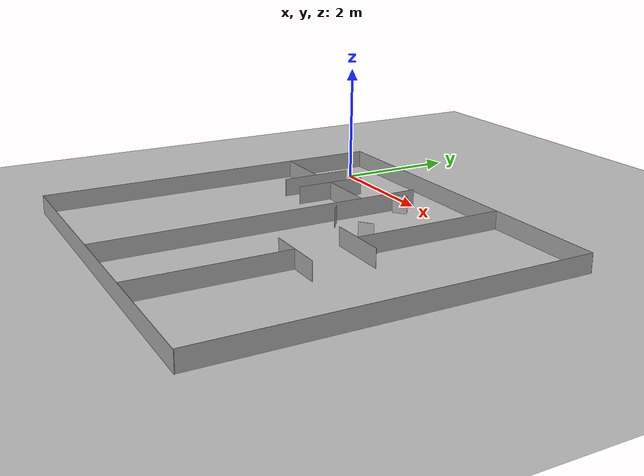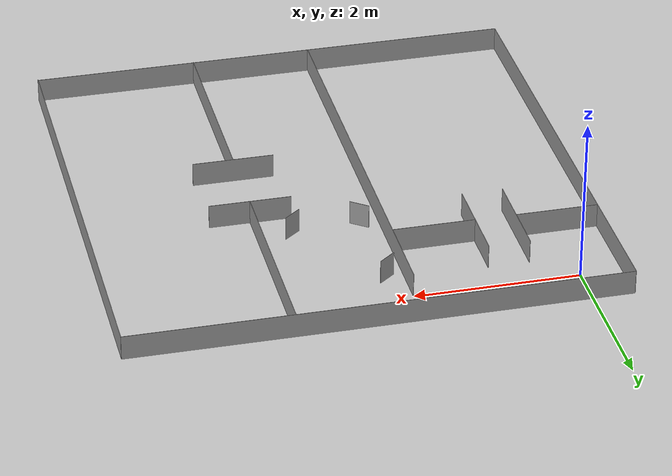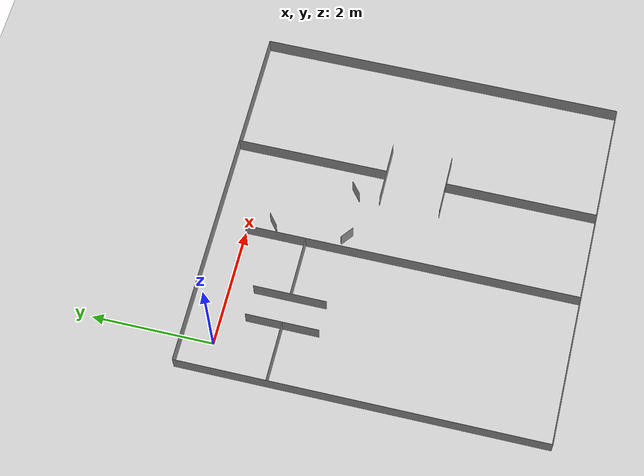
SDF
<sdf version="1.6">
 <world name="default">
  <light name="sun" type="directional">
   <pose>0 0 10 0 -0 0</pose>
   <diffuse>0.8 0.8 0.8 1</diffuse>
   <specular>0.2 0.2 0.2 1</specular>
   <attenuation>
    <range>1000</range>
    <constant>0.9</constant>
    <linear>0.01</linear>
    <quadratic>0.001</quadratic>
   </attenuation>
   <direction>-0.5 0.1 -0.9</direction>
  </light>
  <model name="ground_plane">
   <static>1</static>
   <link name="link">
    <collision name="collision">
     <geometry><plane><normal>0 0 1</normal><size>100 100</size></plane></geometry>
     <surface>
      <contact><collide_bitmask>65535</collide_bitmask></contact>
      <friction><ode><mu>100</mu><mu2>50</mu2></ode></friction>
     </surface>
    </collision>
    <visual name="visual">
     <cast_shadows>0</cast_shadows>
     <geometry><plane><normal>0 0 1</normal><size>100 100</size></plane></geometry>
     <material>
      <script><uri>file://media/materials/scripts/gazebo.material</uri><name>Gazebo/Grey</name></script>
     </material>
    </visual>
   </link>
  </model>
  <gravity>0 0 -9.8</gravity>
  <magnetic_field>6e-06 2.3e-05 -4.2e-05</magnetic_field>
  <atmosphere type="adiabatic"/>
  <physics name="default_physics" default="0" type="ode">
   <max_step_size>0.001</max_step_size>
   <real_time_factor>1</real_time_factor>
   <real_time_update_rate>1000</real_time_update_rate>
  </physics>
  <scene><ambient>0.4 0.4 0.4 1</ambient><background>0.7 0.7 0.7 1</background><shadows>1</shadows></scene>
  <audio><device>default</device></audio>
  <spherical_coordinates>
   <surface_model>EARTH_WGS84</surface_model>
   <latitude_deg>0</latitude_deg>
   <longitude_deg>0</longitude_deg>
   <elevation>0</elevation>
   <heading_deg>0</heading_deg>
  </spherical_coordinates>
  <light name="user_point_light_1" type="point">
   <pose>8.65387 8.47748 1 0 -0 0</pose>
   <diffuse>0.5 0.5 0.5 1</diffuse>
   <specular>0.1 0.1 0.1 1</specular>
   <attenuation>
    <range>20</range>
    <constant>0.5</constant>
    <linear>0.01</linear>
    <quadratic>0.001</quadratic>
   </attenuation>
   <cast_shadows>0</cast_shadows>
   <direction>0 0 -1</direction>
  </light>
  <light name="user_point_light_3" type="point">
   <pose>-4.43712 -8.0056 1 0 -0 0</pose>
   <diffuse>0.5 0.5 0.5 1</diffuse>
   <specular>0.1 0.1 0.1 1</specular>
   <attenuation>
    <range>20</range>
    <constant>0.5</constant>
    <linear>0.01</linear>
    <quadratic>0.001</quadratic>
   </attenuation>
   <cast_shadows>0</cast_shadows>
   <direction>0 0 -1</direction>
  </light>
  <light name="user_point_light_0" type="point">
   <pose>-3.36982 7.52419 1 0 -0 0</pose>
   <diffuse>0.5 0.5 0.5 1</diffuse>
   <specular>0.1 0.1 0.1 1</specular>
   <attenuation>
    <range>20</range>
    <constant>0.5</constant>
    <linear>0.01</linear>
    <quadratic>0.001</quadratic>
   </attenuation>
   <cast_shadows>0</cast_shadows>
   <direction>0 0 -1</direction>
  </light>
  <model name="unit_box_5_5m">
   <link name="link">
    <inertial>
     <mass>1</mass>
     <inertia>
      <ixx>0.166667</ixx>
      <ixy>0</ixy>
      <ixz>0</ixz>
      <iyy>0.166667</iyy>
      <iyz>0</iyz>
      <izz>0.166667</izz>
     </inertia>
    </inertial>
    <pose>0 0 0 1.5707 -0 0</pose>
    <visual name="visual">
     <geometry><box><size>5.5 0.005 0.3</size></box></geometry>
     <material>
      <script><name>Gazebo/Grey</name><uri>file://media/materials/scripts/gazebo.material</uri></script>
      <shader type="vertex"><normal_map>__default__</normal_map></shader>
      <ambient>0.3 0.3 0.3 1</ambient>
      <diffuse>0.7 0.7 0.7 1</diffuse>
      <specular>0.01 0.01 0.01 1</specular>
      <emissive>0 0 0 1</emissive>
     </material>
     <pose>0 -0.156 0 0 -0 0</pose>
    </visual>
    <collision name="collision">
     <pose>0 -0.156 0 0 -0 0</pose>
     <geometry><box><size>5.5 0.005 0.3</size></box></geometry>
     <surface>
      <friction>
       <ode><mu>1</mu><mu2>1</mu2><fdir1>0 0 0</fdir1><slip1>0</slip1><slip2>0</slip2></ode>
       <torsional>
        <coefficient>1</coefficient>
        <patch_radius>0</patch_radius>
        <surface_radius>0</surface_radius>
        <use_patch_radius>1</use_patch_radius>
        <ode><slip>0</slip></ode>
       </torsional>
      </friction>
      <bounce><restitution_coefficient>0</restitution_coefficient><threshold>1e+06</threshold></bounce>
      <contact>
       <collide_without_contact>0</collide_without_contact>
       <collide_without_contact_bitmask>1</collide_without_contact_bitmask>
       <collide_bitmask>1</collide_bitmask>
       <ode>
        <soft_cfm>0</soft_cfm>
        <soft_erp>0.2</soft_erp>
        <kp>1e+13</kp>
        <kd>1</kd>
        <max_vel>0.01</max_vel>
        <min_depth>0</min_depth>
       </ode>
       <bullet>
        <split_impulse>1</split_impulse>
        <split_impulse_penetration_threshold>-0.01</split_impulse_penetration_threshold>
        <soft_cfm>0</soft_cfm>
        <soft_erp>0.2</soft_erp>
        <kp>1e+13</kp>
        <kd>1</kd>
       </bullet>
      </contact>
     </surface>
    </collision>
   </link>
   <static>1</static>
   <pose>2.16 -2.75 0.15 1.5707 0 1.5707</pose>
  </model>
  <model name="unit_box_6_6_3_0_clone">
   <link name="link">
    <inertial>
     <mass>1</mass>
     <inertia>
      <ixx>0.166667</ixx>
      <ixy>0</ixy>
      <ixz>0</ixz>
      <iyy>0.166667</iyy>
      <iyz>0</iyz>
      <izz>0.166667</izz>
     </inertia>
    </inertial>
    <visual name="visual">
     <geometry><box><size>6 0.005 0.3</size></box></geometry>
     <material>
      <script><name>Gazebo/Grey</name><uri>file://media/materials/scripts/gazebo.material</uri></script>
      <shader type="vertex"><normal_map>__default__</normal_map></shader>
      <ambient>0.3 0.3 0.3 1</ambient>
      <diffuse>0.7 0.7 0.7 1</diffuse>
      <specular>0.01 0.01 0.01 1</specular>
      <emissive>0 0 0 1</emissive>
     </material>
    </visual>
    <collision name="collision">
     <geometry><box><size>6 0.005 0.3</size></box></geometry>
     <surface>
      <friction>
       <ode><mu>1</mu><mu2>1</mu2><fdir1>0 0 0</fdir1><slip1>0</slip1><slip2>0</slip2></ode>
       <torsional>
        <coefficient>1</coefficient>
        <patch_radius>0</patch_radius>
        <surface_radius>0</surface_radius>
        <use_patch_radius>1</use_patch_radius>
        <ode><slip>0</slip></ode>
       </torsional>
      </friction>
      <bounce><restitution_coefficient>0</restitution_coefficient><threshold>1e+06</threshold></bounce>
      <contact>
       <collide_without_contact>0</collide_without_contact>
       <collide_without_contact_bitmask>1</collide_without_contact_bitmask>
       <collide_bitmask>1</collide_bitmask>
       <ode>
        <soft_cfm>0</soft_cfm>
        <soft_erp>0.2</soft_erp>
        <kp>1e+13</kp>
        <kd>1</kd>
        <max_vel>0.01</max_vel>
        <min_depth>0</min_depth>
       </ode>
       <bullet>
        <split_impulse>1</split_impulse>
        <split_impulse_penetration_threshold>-0.01</split_impulse_penetration_threshold>
        <soft_cfm>0</soft_cfm>
        <soft_erp>0.2</soft_erp>
        <kp>1e+13</kp>
        <kd>1</kd>
       </bullet>
      </contact>
     </surface>
    </collision>
   </link>
   <static>1</static>
   <pose>2.5 -5.50347 0.143714 0 0.002096 8e-06</pose>
  </model>
  <model name="unit_box_2_5m">
   <link name="link">
    <inertial>
     <mass>1</mass>
     <inertia>
      <ixx>0.166667</ixx>
      <ixy>0</ixy>
      <ixz>0</ixz>
      <iyy>0.166667</iyy>
      <iyz>0</iyz>
      <izz>0.166667</izz>
     </inertia>
    </inertial>
    <visual name="visual">
     <geometry><box><size>2.5 0.005 0.3</size></box></geometry>
     <material>
      <script><name>Gazebo/Grey</name><uri>file://media/materials/scripts/gazebo.material</uri></script>
      <shader type="vertex"><normal_map>__default__</normal_map></shader>
      <ambient>0.3 0.3 0.3 1</ambient>
      <diffuse>0.7 0.7 0.7 1</diffuse>
      <specular>0.01 0.01 0.01 1</specular>
      <emissive>0 0 0 1</emissive>
     </material>
    </visual>
    <collision name="collision">
     <geometry><box><size>2.5 0.005 0.3</size></box></geometry>
     <surface>
      <friction>
       <ode><mu>1</mu><mu2>1</mu2><fdir1>0 0 0</fdir1><slip1>0</slip1><slip2>0</slip2></ode>
       <torsional>
        <coefficient>1</coefficient>
        <patch_radius>0</patch_radius>
        <surface_radius>0</surface_radius>
        <use_patch_radius>1</use_patch_radius>
        <ode><slip>0</slip></ode>
       </torsional>
      </friction>
      <bounce><restitution_coefficient>0</restitution_coefficient><threshold>1e+06</threshold></bounce>
      <contact>
       <collide_without_contact>0</collide_without_contact>
       <collide_without_contact_bitmask>1</collide_without_contact_bitmask>
       <collide_bitmask>1</collide_bitmask>
       <ode>
        <soft_cfm>0</soft_cfm>
        <soft_erp>0.2</soft_erp>
        <kp>1e+13</kp>
        <kd>1</kd>
        <max_vel>0.01</max_vel>
        <min_depth>0</min_depth>
       </ode>
       <bullet>
        <split_impulse>1</split_impulse>
        <split_impulse_penetration_threshold>-0.01</split_impulse_penetration_threshold>
        <soft_cfm>0</soft_cfm>
        <soft_erp>0.2</soft_erp>
        <kp>1e+13</kp>
        <kd>1</kd>
       </bullet>
      </contact>
     </surface>
    </collision>
   </link>
   <static>1</static>
   <pose>3.49996 -4.25094 0.15 -1.3e-05 0 -1.57005</pose>
  </model>
  <model name="unit_box_1m_0_clone">
   <link name="link">
    <inertial>
     <mass>1</mass>
     <inertia>
      <ixx>0.166667</ixx>
      <ixy>0</ixy>
      <ixz>0</ixz>
      <iyy>0.166667</iyy>
      <iyz>0</iyz>
      <izz>0.166667</izz>
     </inertia>
    </inertial>
    <visual name="visual">
     <geometry><box><size>1 0.005 0.3</size></box></geometry>
     <material>
      <script><name>Gazebo/Grey</name><uri>file://media/materials/scripts/gazebo.material</uri></script>
      <shader type="vertex"><normal_map>__default__</normal_map></shader>
      <ambient>0.3 0.3 0.3 1</ambient>
      <diffuse>0.7 0.7 0.7 1</diffuse>
      <specular>0.01 0.01 0.01 1</specular>
      <emissive>0 0 0 1</emissive>
     </material>
    </visual>
    <collision name="collision">
     <geometry><box><size>1 0.005 0.3</size></box></geometry>
     <surface>
      <friction>
       <ode><mu>1</mu><mu2>1</mu2><fdir1>0 0 0</fdir1><slip1>0</slip1><slip2>0</slip2></ode>
       <torsional>
        <coefficient>1</coefficient>
        <patch_radius>0</patch_radius>
        <surface_radius>0</surface_radius>
        <use_patch_radius>1</use_patch_radius>
        <ode><slip>0</slip></ode>
       </torsional>
      </friction>
      <bounce><restitution_coefficient>0</restitution_coefficient><threshold>1e+06</threshold></bounce>
      <contact>
       <collide_without_contact>0</collide_without_contact>
       <collide_without_contact_bitmask>1</collide_without_contact_bitmask>
       <collide_bitmask>1</collide_bitmask>
       <ode>
        <soft_cfm>0</soft_cfm>
        <soft_erp>0.2</soft_erp>
        <kp>1e+13</kp>
        <kd>1</kd>
        <max_vel>0.01</max_vel>
        <min_depth>0</min_depth>
       </ode>
       <bullet>
        <split_impulse>1</split_impulse>
        <split_impulse_penetration_threshold>-0.01</split_impulse_penetration_threshold>
        <soft_cfm>0</soft_cfm>
        <soft_erp>0.2</soft_erp>
        <kp>1e+13</kp>
        <kd>1</kd>
       </bullet>
      </contact>
     </surface>
    </collision>
   </link>
   <static>1</static>
   <pose>3.5 -2.99833 0.15 -7e-06 -0 0.000224</pose>
  </model>
  <model name="unit_box_1m_0_clone_0">
   <link name="link">
    <inertial>
     <mass>1</mass>
     <inertia>
      <ixx>0.166667</ixx>
      <ixy>0</ixy>
      <ixz>0</ixz>
      <iyy>0.166667</iyy>
      <iyz>0</iyz>
      <izz>0.166667</izz>
     </inertia>
    </inertial>
    <visual name="visual">
     <geometry><box><size>1 0.005 0.3</size></box></geometry>
     <material>
      <script><name>Gazebo/Grey</name><uri>file://media/materials/scripts/gazebo.material</uri></script>
      <shader type="vertex"><normal_map>__default__</normal_map></shader>
      <ambient>0.3 0.3 0.3 1</ambient>
      <diffuse>0.7 0.7 0.7 1</diffuse>
      <specular>0.01 0.01 0.01 1</specular>
      <emissive>0 0 0 1</emissive>
     </material>
    </visual>
    <collision name="collision">
     <geometry><box><size>1 0.005 0.3</size></box></geometry>
     <surface>
      <friction>
       <ode><mu>1</mu><mu2>1</mu2><fdir1>0 0 0</fdir1><slip1>0</slip1><slip2>0</slip2></ode>
       <torsional>
        <coefficient>1</coefficient>
        <patch_radius>0</patch_radius>
        <surface_radius>0</surface_radius>
        <use_patch_radius>1</use_patch_radius>
        <ode><slip>0</slip></ode>
       </torsional>
      </friction>
      <bounce><restitution_coefficient>0</restitution_coefficient><threshold>1e+06</threshold></bounce>
      <contact>
       <collide_without_contact>0</collide_without_contact>
       <collide_without_contact_bitmask>1</collide_without_contact_bitmask>
       <collide_bitmask>1</collide_bitmask>
       <ode>
        <soft_cfm>0</soft_cfm>
        <soft_erp>0.2</soft_erp>
        <kp>1e+13</kp>
        <kd>1</kd>
        <max_vel>0.01</max_vel>
        <min_depth>0</min_depth>
       </ode>
       <bullet>
        <split_impulse>1</split_impulse>
        <split_impulse_penetration_threshold>-0.01</split_impulse_penetration_threshold>
        <soft_cfm>0</soft_cfm>
        <soft_erp>0.2</soft_erp>
        <kp>1e+13</kp>
        <kd>1</kd>
       </bullet>
      </contact>
     </surface>
    </collision>
   </link>
   <static>1</static>
   <pose>3.5 -2.00154 0.15 -2e-06 -0 -6e-06</pose>
  </model>
  <model name="unit_box_2_5m_clone">
   <link name="link">
    <inertial>
     <mass>1</mass>
     <inertia>
      <ixx>0.166667</ixx>
      <ixy>0</ixy>
      <ixz>0</ixz>
      <iyy>0.166667</iyy>
      <iyz>0</iyz>
      <izz>0.166667</izz>
     </inertia>
    </inertial>
    <visual name="visual">
     <geometry><box><size>2.5 0.005 0.3</size></box></geometry>
     <material>
      <script><name>Gazebo/Grey</name><uri>file://media/materials/scripts/gazebo.material</uri></script>
      <shader type="vertex"><normal_map>__default__</normal_map></shader>
      <ambient>0.3 0.3 0.3 1</ambient>
      <diffuse>0.7 0.7 0.7 1</diffuse>
      <specular>0.01 0.01 0.01 1</specular>
      <emissive>0 0 0 1</emissive>
     </material>
    </visual>
    <collision name="collision">
     <geometry><box><size>2.5 0.005 0.3</size></box></geometry>
     <surface>
      <friction>
       <ode><mu>1</mu><mu2>1</mu2><fdir1>0 0 0</fdir1><slip1>0</slip1><slip2>0</slip2></ode>
       <torsional>
        <coefficient>1</coefficient>
        <patch_radius>0</patch_radius>
        <surface_radius>0</surface_radius>
        <use_patch_radius>1</use_patch_radius>
        <ode><slip>0</slip></ode>
       </torsional>
      </friction>
      <bounce><restitution_coefficient>0</restitution_coefficient><threshold>1e+06</threshold></bounce>
      <contact>
       <collide_without_contact>0</collide_without_contact>
       <collide_without_contact_bitmask>1</collide_without_contact_bitmask>
       <collide_bitmask>1</collide_bitmask>
       <ode>
        <soft_cfm>0</soft_cfm>
        <soft_erp>0.2</soft_erp>
        <kp>1e+13</kp>
        <kd>1</kd>
        <max_vel>0.01</max_vel>
        <min_depth>0</min_depth>
       </ode>
       <bullet>
        <split_impulse>1</split_impulse>
        <split_impulse_penetration_threshold>-0.01</split_impulse_penetration_threshold>
        <soft_cfm>0</soft_cfm>
        <soft_erp>0.2</soft_erp>
        <kp>1e+13</kp>
        <kd>1</kd>
       </bullet>
      </contact>
     </surface>
    </collision>
   </link>
   <static>1</static>
   <pose>3.50001 -0.74899 0.15 -4e-06 -0 -1.56999</pose>
  </model>
  <model name="unit_box_6_6_3_0">
   <link name="link">
    <inertial>
     <mass>1</mass>
     <inertia>
      <ixx>0.166667</ixx>
      <ixy>0</ixy>
      <ixz>0</ixz>
      <iyy>0.166667</iyy>
      <iyz>0</iyz>
      <izz>0.166667</izz>
     </inertia>
    </inertial>
    <visual name="visual">
     <geometry><box><size>6 0.005 0.3</size></box></geometry>
     <material>
      <script><name>Gazebo/Grey</name><uri>file://media/materials/scripts/gazebo.material</uri></script>
      <shader type="vertex"><normal_map>__default__</normal_map></shader>
      <ambient>0.3 0.3 0.3 1</ambient>
      <diffuse>0.7 0.7 0.7 1</diffuse>
      <specular>0.01 0.01 0.01 1</specular>
      <emissive>0 0 0 1</emissive>
     </material>
    </visual>
    <collision name="collision">
     <geometry><box><size>6 0.005 0.3</size></box></geometry>
     <surface>
      <friction>
       <ode><mu>1</mu><mu2>1</mu2><fdir1>0 0 0</fdir1><slip1>0</slip1><slip2>0</slip2></ode>
       <torsional>
        <coefficient>1</coefficient>
        <patch_radius>0</patch_radius>
        <surface_radius>0</surface_radius>
        <use_patch_radius>1</use_patch_radius>
        <ode><slip>0</slip></ode>
       </torsional>
      </friction>
      <bounce><restitution_coefficient>0</restitution_coefficient><threshold>1e+06</threshold></bounce>
      <contact>
       <collide_without_contact>0</collide_without_contact>
       <collide_without_contact_bitmask>1</collide_without_contact_bitmask>
       <collide_bitmask>1</collide_bitmask>
       <ode>
        <soft_cfm>0</soft_cfm>
        <soft_erp>0.2</soft_erp>
        <kp>1e+13</kp>
        <kd>1</kd>
        <max_vel>0.01</max_vel>
        <min_depth>0</min_depth>
       </ode>
       <bullet>
        <split_impulse>1</split_impulse>
        <split_impulse_penetration_threshold>-0.01</split_impulse_penetration_threshold>
        <soft_cfm>0</soft_cfm>
        <soft_erp>0.2</soft_erp>
        <kp>1e+13</kp>
        <kd>1</kd>
       </bullet>
      </contact>
     </surface>
    </collision>
   </link>
   <static>1</static>
   <pose>2.49964 0.503222 0.149981 -3e-06 6e-06 0.000372</pose>
  </model>
  <model name="unit_box_6_6_3_0_clone_clone_clone">
   <link name="link">
    <inertial>
     <mass>1</mass>
     <inertia>
      <ixx>0.166667</ixx>
      <ixy>0</ixy>
      <ixz>0</ixz>
      <iyy>0.166667</iyy>
      <iyz>0</iyz>
      <izz>0.166667</izz>
     </inertia>
    </inertial>
    <visual name="visual">
     <geometry><box><size>6 0.005 0.3</size></box></geometry>
     <material>
      <script><name>Gazebo/Grey</name><uri>file://media/materials/scripts/gazebo.material</uri></script>
      <shader type="vertex"><normal_map>__default__</normal_map></shader>
      <ambient>0.3 0.3 0.3 1</ambient>
      <diffuse>0.7 0.7 0.7 1</diffuse>
      <specular>0.01 0.01 0.01 1</specular>
      <emissive>0 0 0 1</emissive>
     </material>
    </visual>
    <collision name="collision">
     <geometry><box><size>6 0.005 0.3</size></box></geometry>
     <surface>
      <friction>
       <ode><mu>1</mu><mu2>1</mu2><fdir1>0 0 0</fdir1><slip1>0</slip1><slip2>0</slip2></ode>
       <torsional>
        <coefficient>1</coefficient>
        <patch_radius>0</patch_radius>
        <surface_radius>0</surface_radius>
        <use_patch_radius>1</use_patch_radius>
        <ode><slip>0</slip></ode>
       </torsional>
      </friction>
      <bounce><restitution_coefficient>0</restitution_coefficient><threshold>1e+06</threshold></bounce>
      <contact>
       <collide_without_contact>0</collide_without_contact>
       <collide_without_contact_bitmask>1</collide_without_contact_bitmask>
       <collide_bitmask>1</collide_bitmask>
       <ode>
        <soft_cfm>0</soft_cfm>
        <soft_erp>0.2</soft_erp>
        <kp>1e+13</kp>
        <kd>1</kd>
        <max_vel>0.01</max_vel>
        <min_depth>0</min_depth>
       </ode>
       <bullet>
        <split_impulse>1</split_impulse>
        <split_impulse_penetration_threshold>-0.01</split_impulse_penetration_threshold>
        <soft_cfm>0</soft_cfm>
        <soft_erp>0.2</soft_erp>
        <kp>1e+13</kp>
        <kd>1</kd>
       </bullet>
      </contact>
     </surface>
    </collision>
   </link>
   <static>1</static>
   <pose>5.50087 -2.49919 0.149981 -1e-06 6e-06 -1.57005</pose>
  </model>
  <model name="unit_box_1m">
   <link name="link">
    <inertial>
     <mass>1</mass>
     <inertia>
      <ixx>0.166667</ixx>
      <ixy>0</ixy>
      <ixz>0</ixz>
      <iyy>0.166667</iyy>
      <iyz>0</iyz>
      <izz>0.166667</izz>
     </inertia>
    </inertial>
    <visual name="visual">
     <geometry><box><size>1 0.005 0.3</size></box></geometry>
     <material>
      <script><name>Gazebo/Grey</name><uri>file://media/materials/scripts/gazebo.material</uri></script>
      <shader type="vertex"><normal_map>__default__</normal_map></shader>
      <ambient>0.3 0.3 0.3 1</ambient>
      <diffuse>0.7 0.7 0.7 1</diffuse>
      <specular>0.01 0.01 0.01 1</specular>
      <emissive>0 0 0 1</emissive>
     </material>
    </visual>
    <collision name="collision">
     <geometry><box><size>1 0.005 0.3</size></box></geometry>
     <surface>
      <friction>
       <ode><mu>1</mu><mu2>1</mu2><fdir1>0 0 0</fdir1><slip1>0</slip1><slip2>0</slip2></ode>
       <torsional>
        <coefficient>1</coefficient>
        <patch_radius>0</patch_radius>
        <surface_radius>0</surface_radius>
        <use_patch_radius>1</use_patch_radius>
        <ode><slip>0</slip></ode>
       </torsional>
      </friction>
      <bounce><restitution_coefficient>0</restitution_coefficient><threshold>1e+06</threshold></bounce>
      <contact>
       <collide_without_contact>0</collide_without_contact>
       <collide_without_contact_bitmask>1</collide_without_contact_bitmask>
       <collide_bitmask>1</collide_bitmask>
       <ode>
        <soft_cfm>0</soft_cfm>
        <soft_erp>0.2</soft_erp>
        <kp>1e+13</kp>
        <kd>1</kd>
        <max_vel>0.01</max_vel>
        <min_depth>0</min_depth>
       </ode>
       <bullet>
        <split_impulse>1</split_impulse>
        <split_impulse_penetration_threshold>-0.01</split_impulse_penetration_threshold>
        <soft_cfm>0</soft_cfm>
        <soft_erp>0.2</soft_erp>
        <kp>1e+13</kp>
        <kd>1</kd>
       </bullet>
      </contact>
     </surface>
    </collision>
   </link>
   <static>1</static>
   <pose>-0.000314 -0.999983 0.15 -5e-06 -0 -2e-05</pose>
  </model>
  <model name="unit_box_6_6_3_0_clone_clone">
   <link name="link">
    <inertial>
     <mass>1</mass>
     <inertia>
      <ixx>0.166667</ixx>
      <ixy>0</ixy>
      <ixz>0</ixz>
      <iyy>0.166667</iyy>
      <iyz>0</iyz>
      <izz>0.166667</izz>
     </inertia>
    </inertial>
    <visual name="visual">
     <geometry><box><size>6 0.005 0.3</size></box></geometry>
     <material>
      <script><name>Gazebo/Grey</name><uri>file://media/materials/scripts/gazebo.material</uri></script>
      <shader type="vertex"><normal_map>__default__</normal_map></shader>
      <ambient>0.3 0.3 0.3 1</ambient>
      <diffuse>0.7 0.7 0.7 1</diffuse>
      <specular>0.01 0.01 0.01 1</specular>
      <emissive>0 0 0 1</emissive>
     </material>
    </visual>
    <collision name="collision">
     <geometry><box><size>6 0.005 0.3</size></box></geometry>
     <surface>
      <friction>
       <ode><mu>1</mu><mu2>1</mu2><fdir1>0 0 0</fdir1><slip1>0</slip1><slip2>0</slip2></ode>
       <torsional>
        <coefficient>1</coefficient>
        <patch_radius>0</patch_radius>
        <surface_radius>0</surface_radius>
        <use_patch_radius>1</use_patch_radius>
        <ode><slip>0</slip></ode>
       </torsional>
      </friction>
      <bounce><restitution_coefficient>0</restitution_coefficient><threshold>1e+06</threshold></bounce>
      <contact>
       <collide_without_contact>0</collide_without_contact>
       <collide_without_contact_bitmask>1</collide_without_contact_bitmask>
       <collide_bitmask>1</collide_bitmask>
       <ode>
        <soft_cfm>0</soft_cfm>
        <soft_erp>0.2</soft_erp>
        <kp>1e+13</kp>
        <kd>1</kd>
        <max_vel>0.01</max_vel>
        <min_depth>0</min_depth>
       </ode>
       <bullet>
        <split_impulse>1</split_impulse>
        <split_impulse_penetration_threshold>-0.01</split_impulse_penetration_threshold>
        <soft_cfm>0</soft_cfm>
        <soft_erp>0.2</soft_erp>
        <kp>1e+13</kp>
        <kd>1</kd>
       </bullet>
      </contact>
     </surface>
    </collision>
   </link>
   <static>1</static>
   <pose>-0.501651 -2.5001 0.14993 2.7e-05 2.3e-05 -1.56978</pose>
  </model>
  <model name="unit_box_1m_0_clone_1">
   <link name="link">
    <inertial>
     <mass>1</mass>
     <inertia>
      <ixx>0.166667</ixx>
      <ixy>0</ixy>
      <ixz>0</ixz>
      <iyy>0.166667</iyy>
      <iyz>0</iyz>
      <izz>0.166667</izz>
     </inertia>
    </inertial>
    <visual name="visual">
     <geometry><box><size>1 0.005 0.3</size></box></geometry>
     <material>
      <script><name>Gazebo/Grey</name><uri>file://media/materials/scripts/gazebo.material</uri></script>
      <shader type="vertex"><normal_map>__default__</normal_map></shader>
      <ambient>0.3 0.3 0.3 1</ambient>
      <diffuse>0.7 0.7 0.7 1</diffuse>
      <specular>0.01 0.01 0.01 1</specular>
      <emissive>0 0 0 1</emissive>
     </material>
    </visual>
    <collision name="collision">
     <geometry><box><size>1 0.005 0.3</size></box></geometry>
     <surface>
      <friction>
       <ode><mu>1</mu><mu2>1</mu2><fdir1>0 0 0</fdir1><slip1>0</slip1><slip2>0</slip2></ode>
       <torsional>
        <coefficient>1</coefficient>
        <patch_radius>0</patch_radius>
        <surface_radius>0</surface_radius>
        <use_patch_radius>1</use_patch_radius>
        <ode><slip>0</slip></ode>
       </torsional>
      </friction>
      <bounce><restitution_coefficient>0</restitution_coefficient><threshold>1e+06</threshold></bounce>
      <contact>
       <collide_without_contact>0</collide_without_contact>
       <collide_without_contact_bitmask>1</collide_without_contact_bitmask>
       <collide_bitmask>1</collide_bitmask>
       <ode>
        <soft_cfm>0</soft_cfm>
        <soft_erp>0.2</soft_erp>
        <kp>1e+13</kp>
        <kd>1</kd>
        <max_vel>0.01</max_vel>
        <min_depth>0</min_depth>
       </ode>
       <bullet>
        <split_impulse>1</split_impulse>
        <split_impulse_penetration_threshold>-0.01</split_impulse_penetration_threshold>
        <soft_cfm>0</soft_cfm>
        <soft_erp>0.2</soft_erp>
        <kp>1e+13</kp>
        <kd>1</kd>
       </bullet>
      </contact>
     </surface>
    </collision>
   </link>
   <static>1</static>
   <pose>1.50179 -1.00283 0.149196 -1.7e-05 0.000226 -0.000454</pose>
  </model>
  <model name="unit_box_1.2m">
   <link name="link">
    <inertial>
     <mass>1</mass>
     <inertia>
      <ixx>0.166667</ixx>
      <ixy>0</ixy>
      <ixz>0</ixz>
      <iyy>0.166667</iyy>
      <iyz>0</iyz>
      <izz>0.166667</izz>
     </inertia>
    </inertial>
    <visual name="visual">
     <geometry><box><size>1.2 0.005 0.3</size></box></geometry>
     <material>
      <script><name>Gazebo/Grey</name><uri>file://media/materials/scripts/gazebo.material</uri></script>
      <shader type="vertex"><normal_map>__default__</normal_map></shader>
      <ambient>0.3 0.3 0.3 1</ambient>
      <diffuse>0.7 0.7 0.7 1</diffuse>
      <specular>0.01 0.01 0.01 1</specular>
      <emissive>0 0 0 1</emissive>
     </material>
    </visual>
    <collision name="collision">
     <geometry><box><size>1.2 0.005 0.3</size></box></geometry>
     <surface>
      <friction>
       <ode><mu>1</mu><mu2>1</mu2><fdir1>0 0 0</fdir1><slip1>0</slip1><slip2>0</slip2></ode>
       <torsional>
        <coefficient>1</coefficient>
        <patch_radius>0</patch_radius>
        <surface_radius>0</surface_radius>
        <use_patch_radius>1</use_patch_radius>
        <ode><slip>0</slip></ode>
       </torsional>
      </friction>
      <bounce><restitution_coefficient>0</restitution_coefficient><threshold>1e+06</threshold></bounce>
      <contact>
       <collide_without_contact>0</collide_without_contact>
       <collide_without_contact_bitmask>1</collide_without_contact_bitmask>
       <collide_bitmask>1</collide_bitmask>
       <ode>
        <soft_cfm>0</soft_cfm>
        <soft_erp>0.2</soft_erp>
        <kp>1e+13</kp>
        <kd>1</kd>
        <max_vel>0.01</max_vel>
        <min_depth>0</min_depth>
       </ode>
       <bullet>
        <split_impulse>1</split_impulse>
        <split_impulse_penetration_threshold>-0.01</split_impulse_penetration_threshold>
        <soft_cfm>0</soft_cfm>
        <soft_erp>0.2</soft_erp>
        <kp>1e+13</kp>
        <kd>1</kd>
       </bullet>
      </contact>
     </surface>
    </collision>
   </link>
   <static>1</static>
   <pose>1 -1.00016 0.149196 -1.7e-05 0.000226 1.57</pose>
  </model>
  <model name="unit_box_1.2m_clone">
   <link name="link">
    <inertial>
     <mass>1</mass>
     <inertia>
      <ixx>0.166667</ixx>
      <ixy>0</ixy>
      <ixz>0</ixz>
      <iyy>0.166667</iyy>
      <iyz>0</iyz>
      <izz>0.166667</izz>
     </inertia>
    </inertial>
    <visual name="visual">
     <geometry><box><size>1.2 0.005 0.3</size></box></geometry>
     <material>
      <script><name>Gazebo/Grey</name><uri>file://media/materials/scripts/gazebo.material</uri></script>
      <shader type="vertex"><normal_map>__default__</normal_map></shader>
      <ambient>0.3 0.3 0.3 1</ambient>
      <diffuse>0.7 0.7 0.7 1</diffuse>
      <specular>0.01 0.01 0.01 1</specular>
      <emissive>0 0 0 1</emissive>
     </material>
    </visual>
    <collision name="collision">
     <geometry><box><size>1.2 0.005 0.3</size></box></geometry>
     <surface>
      <friction>
       <ode><mu>1</mu><mu2>1</mu2><fdir1>0 0 0</fdir1><slip1>0</slip1><slip2>0</slip2></ode>
       <torsional>
        <coefficient>1</coefficient>
        <patch_radius>0</patch_radius>
        <surface_radius>0</surface_radius>
        <use_patch_radius>1</use_patch_radius>
        <ode><slip>0</slip></ode>
       </torsional>
      </friction>
      <bounce><restitution_coefficient>0</restitution_coefficient><threshold>1e+06</threshold></bounce>
      <contact>
       <collide_without_contact>0</collide_without_contact>
       <collide_without_contact_bitmask>1</collide_without_contact_bitmask>
       <collide_bitmask>1</collide_bitmask>
       <ode>
        <soft_cfm>0</soft_cfm>
        <soft_erp>0.2</soft_erp>
        <kp>1e+13</kp>
        <kd>1</kd>
        <max_vel>0.01</max_vel>
        <min_depth>0</min_depth>
       </ode>
       <bullet>
        <split_impulse>1</split_impulse>
        <split_impulse_penetration_threshold>-0.01</split_impulse_penetration_threshold>
        <soft_cfm>0</soft_cfm>
        <soft_erp>0.2</soft_erp>
        <kp>1e+13</kp>
        <kd>1</kd>
       </bullet>
      </contact>
     </surface>
    </collision>
   </link>
   <static>1</static>
   <pose>0.5 -1 0.15 0 -0 1.57</pose>
  </model>
  <model name="unit_box_50cm_30cm">
   <link name="link">
    <inertial>
     <mass>1</mass>
     <inertia>
      <ixx>0.166667</ixx>
      <ixy>0</ixy>
      <ixz>0</ixz>
      <iyy>0.166667</iyy>
      <iyz>0</iyz>
      <izz>0.166667</izz>
     </inertia>
    </inertial>
    <visual name="visual">
     <geometry><box><size>0.25 0.005 0.3</size></box></geometry>
     <material>
      <script><name>Gazebo/Grey</name><uri>file://media/materials/scripts/gazebo.material</uri></script>
      <shader type="vertex"><normal_map>__default__</normal_map></shader>
      <ambient>0.3 0.3 0.3 1</ambient>
      <diffuse>0.7 0.7 0.7 1</diffuse>
      <specular>0.01 0.01 0.01 1</specular>
      <emissive>0 0 0 1</emissive>
     </material>
    </visual>
    <collision name="collision">
     <geometry><box><size>0.25 0.005 0.3</size></box></geometry>
     <surface>
      <friction>
       <ode><mu>1</mu><mu2>1</mu2><fdir1>0 0 0</fdir1><slip1>0</slip1><slip2>0</slip2></ode>
       <torsional>
        <coefficient>1</coefficient>
        <patch_radius>0</patch_radius>
        <surface_radius>0</surface_radius>
        <use_patch_radius>1</use_patch_radius>
        <ode><slip>0</slip></ode>
       </torsional>
      </friction>
      <bounce><restitution_coefficient>0</restitution_coefficient><threshold>1e+06</threshold></bounce>
      <contact>
       <collide_without_contact>0</collide_without_contact>
       <collide_without_contact_bitmask>1</collide_without_contact_bitmask>
       <collide_bitmask>1</collide_bitmask>
       <ode>
        <soft_cfm>0</soft_cfm>
        <soft_erp>0.2</soft_erp>
        <kp>1e+13</kp>
        <kd>1</kd>
        <max_vel>0.01</max_vel>
        <min_depth>0</min_depth>
       </ode>
       <bullet>
        <split_impulse>1</split_impulse>
        <split_impulse_penetration_threshold>-0.01</split_impulse_penetration_threshold>
        <soft_cfm>0</soft_cfm>
        <soft_erp>0.2</soft_erp>
        <kp>1e+13</kp>
        <kd>1</kd>
       </bullet>
      </contact>
     </surface>
    </collision>
   </link>
   <static>1</static>
   <pose>3.07671 -1.59084 0.165707 0 -0 0.675672</pose>
  </model>
  <model name="unit_box_50cm_30cm_clone">
   <link name="link">
    <inertial>
     <mass>1</mass>
     <inertia>
      <ixx>0.166667</ixx>
      <ixy>0</ixy>
      <ixz>0</ixz>
      <iyy>0.166667</iyy>
      <iyz>0</iyz>
      <izz>0.166667</izz>
     </inertia>
    </inertial>
    <visual name="visual">
     <geometry><box><size>0.25 0.005 0.3</size></box></geometry>
     <material>
      <script><name>Gazebo/Grey</name><uri>file://media/materials/scripts/gazebo.material</uri></script>
      <shader type="vertex"><normal_map>__default__</normal_map></shader>
      <ambient>0.3 0.3 0.3 1</ambient>
      <diffuse>0.7 0.7 0.7 1</diffuse>
      <specular>0.01 0.01 0.01 1</specular>
      <emissive>0 0 0 1</emissive>
     </material>
    </visual>
    <collision name="collision">
     <geometry><box><size>0.25 0.005 0.3</size></box></geometry>
     <surface>
      <friction>
       <ode><mu>1</mu><mu2>1</mu2><fdir1>0 0 0</fdir1><slip1>0</slip1><slip2>0</slip2></ode>
       <torsional>
        <coefficient>1</coefficient>
        <patch_radius>0</patch_radius>
        <surface_radius>0</surface_radius>
        <use_patch_radius>1</use_patch_radius>
        <ode><slip>0</slip></ode>
       </torsional>
      </friction>
      <bounce><restitution_coefficient>0</restitution_coefficient><threshold>1e+06</threshold></bounce>
      <contact>
       <collide_without_contact>0</collide_without_contact>
       <collide_without_contact_bitmask>1</collide_without_contact_bitmask>
       <collide_bitmask>1</collide_bitmask>
       <ode>
        <soft_cfm>0</soft_cfm>
        <soft_erp>0.2</soft_erp>
        <kp>1e+13</kp>
        <kd>1</kd>
        <max_vel>0.01</max_vel>
        <min_depth>0</min_depth>
       </ode>
       <bullet>
        <split_impulse>1</split_impulse>
        <split_impulse_penetration_threshold>-0.01</split_impulse_penetration_threshold>
        <soft_cfm>0</soft_cfm>
        <soft_erp>0.2</soft_erp>
        <kp>1e+13</kp>
        <kd>1</kd>
       </bullet>
      </contact>
     </surface>
    </collision>
   </link>
   <static>1</static>
   <pose>2.21559 -0.412815 0.165707 0 -0 0.675672</pose>
  </model>
  <model name="unit_box_50cm_30cm_clone_0">
   <link name="link">
    <inertial>
     <mass>1</mass>
     <inertia>
      <ixx>0.166667</ixx>
      <ixy>0</ixy>
      <ixz>0</ixz>
      <iyy>0.166667</iyy>
      <iyz>0</iyz>
      <izz>0.166667</izz>
     </inertia>
    </inertial>
    <visual name="visual">
     <geometry><box><size>0.25 0.005 0.3</size></box></geometry>
     <material>
      <script><name>Gazebo/Grey</name><uri>file://media/materials/scripts/gazebo.material</uri></script>
      <shader type="vertex"><normal_map>__default__</normal_map></shader>
      <ambient>0.3 0.3 0.3 1</ambient>
      <diffuse>0.7 0.7 0.7 1</diffuse>
      <specular>0.01 0.01 0.01 1</specular>
      <emissive>0 0 0 1</emissive>
     </material>
    </visual>
    <collision name="collision">
     <geometry><box><size>0.25 0.005 0.3</size></box></geometry>
     <surface>
      <friction>
       <ode><mu>1</mu><mu2>1</mu2><fdir1>0 0 0</fdir1><slip1>0</slip1><slip2>0</slip2></ode>
       <torsional>
        <coefficient>1</coefficient>
        <patch_radius>0</patch_radius>
        <surface_radius>0</surface_radius>
        <use_patch_radius>1</use_patch_radius>
        <ode><slip>0</slip></ode>
       </torsional>
      </friction>
      <bounce><restitution_coefficient>0</restitution_coefficient><threshold>1e+06</threshold></bounce>
      <contact>
       <collide_without_contact>0</collide_without_contact>
       <collide_without_contact_bitmask>1</collide_without_contact_bitmask>
       <collide_bitmask>1</collide_bitmask>
       <ode>
        <soft_cfm>0</soft_cfm>
        <soft_erp>0.2</soft_erp>
        <kp>1e+13</kp>
        <kd>1</kd>
        <max_vel>0.01</max_vel>
        <min_depth>0</min_depth>
       </ode>
       <bullet>
        <split_impulse>1</split_impulse>
        <split_impulse_penetration_threshold>-0.01</split_impulse_penetration_threshold>
        <soft_cfm>0</soft_cfm>
        <soft_erp>0.2</soft_erp>
        <kp>1e+13</kp>
        <kd>1</kd>
       </bullet>
      </contact>
     </surface>
    </collision>
   </link>
   <static>1</static>
   <pose>2.25205 -1.6308 0.165707 0 -0 2.49545</pose>
  </model>
 </world>
</sdf>
